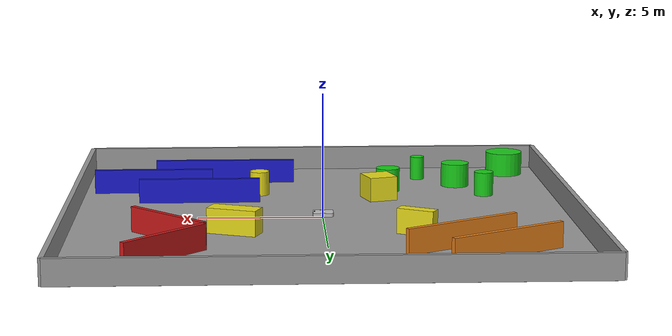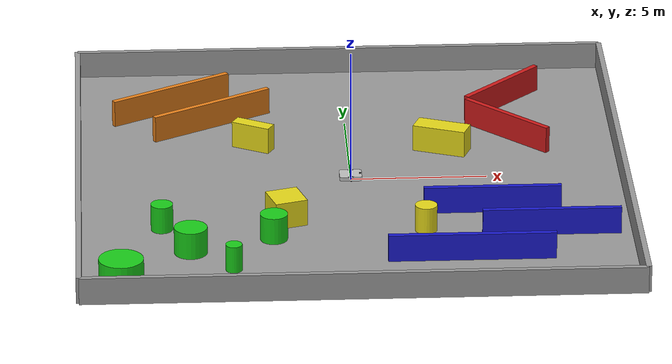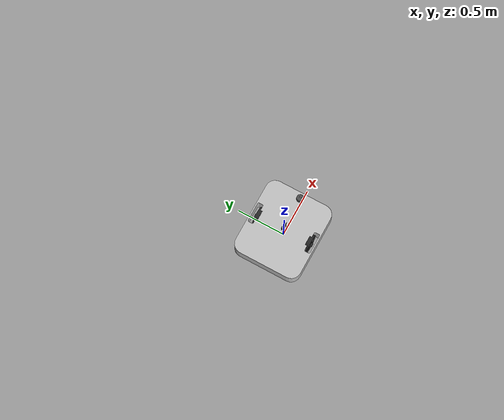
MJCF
<?xml version="1.0" encoding="utf-8"?>
<mujoco model="rl_agv_training_world">

  <!-- Sử dụng compiler và option của File 1 để đảm bảo động học robot hoạt động đúng -->
  <compiler
    angle="degree"
    meshdir="../meshes"
    autolimits="true"/>

  <option
    timestep="0.002"
    gravity="0 0 -9.81"
    integrator="implicitfast"/>

  <visual>
    <headlight
      ambient="0.4 0.4 0.4"
      diffuse="0.8 0.8 0.8"
      specular="0.1 0.1 0.1"/>
  </visual>

  <statistic center="0 0 0.2" extent="1.5"/>

  <default>
    <joint damping="0.1" armature="0.001"/>

    <default class="visual">
      <geom
        type="mesh"
        contype="0"
        conaffinity="0"
        density="0"
        group="2"/>
    </default>

    <default class="collision">
      <geom
        group="3"
        density="0"
        friction="1.0 0.005 0.0001"
        solref="0.005 1"
        solimp="0.9 0.95 0.001"/>
    </default>
  </default>

  <asset>
    <!-- Assets của Robot (Từ File 1) -->
    <mesh name="base_link_mesh" file="base_link.STL"/>
    <mesh name="left_wheel_mesh" file="left_wheel.STL"/>
    <mesh name="right_wheel_mesh" file="right_wheel.STL"/>
    <mesh name="front_left_caster_mesh" file="front_left_caster.STL"/>
    <mesh name="front_right_caster_mesh" file="front_right_caster.STL"/>
    <mesh name="rear_left_caster_mesh" file="rear_left_caster.STL"/>
    <mesh name="rear_right_caster_mesh" file="rear_right_caster.STL"/>
    <mesh name="imu_mesh" file="imu.STL"/>
    <mesh name="lidar_mesh" file="lidar.STL"/>

    <!-- Materials của Bản đồ (Từ File 2) -->
    <material name="mat_grey"   rgba="0.6 0.6 0.6 1"/>
    <material name="mat_green"  rgba="0.1 0.8 0.1 1"/>
    <material name="mat_red"    rgba="0.8 0.1 0.1 1"/>
    <material name="mat_blue"   rgba="0.1 0.1 0.8 1"/>
    <material name="mat_orange" rgba="0.9 0.5 0.1 1"/>
    <material name="mat_yellow" rgba="0.9 0.85 0.1 1"/>
  </asset>

  <worldbody>
    <!-- Môi trường ánh sáng và mặt đất (Từ File 2) -->
    <light directional="true" pos="0 0 10" dir="0 0 -1" diffuse="0.8 0.8 0.8"/>

    <geom name="ground_plane" type="plane" size="10 10 0.1" material="mat_grey" friction="1.0 0.005 0.0001"/>

    <!-- BOUNDARY WALLS (Từ File 2) -->
    <body name="boundary_walls">
        <geom name="wall_north" type="box" pos="0 10 0.5"  size="10 0.1 0.5" material="mat_grey"/>
        <geom name="wall_south" type="box" pos="0 -10 0.5" size="10 0.1 0.5" material="mat_grey"/>
        <geom name="wall_east"  type="box" pos="10 0 0.5"  size="0.1 10 0.5" material="mat_grey"/>
        <geom name="wall_west"  type="box" pos="-10 0 0.5" size="0.1 10 0.5" material="mat_grey"/>
    </body>

    <!-- COMPLEX OBSTACLE 1: PILLAR FOREST (Từ File 2) -->
    <body name="pillar_forest">
        <geom name="p1" type="cylinder" pos="-6 -6 0.5"     size="0.6 0.5" material="mat_green"/>
        <geom name="p2" type="cylinder" pos="-4.5 -7.5 0.5" size="0.3 0.5" material="mat_green"/>
        <geom name="p3" type="cylinder" pos="-7 -4 0.5"     size="0.4 0.5" material="mat_green"/>
        <geom name="p4" type="cylinder" pos="-3 -5 0.5"     size="0.5 0.5" material="mat_green"/>
        <geom name="p5" type="cylinder" pos="-8.5 -8.5 0.5" size="0.8 0.5" material="mat_green"/>
    </body>

    <!-- COMPLEX OBSTACLE 2: V-TRAP (Từ File 2 - Đã chuyển 0.78539 rad sang 45 độ) -->
    <body name="v_trap">
        <geom name="arm1" type="box" pos="6 6.5 0.5" euler="0 0 45"  size="2 0.1 0.5" material="mat_red"/>
        <geom name="arm2" type="box" pos="6 3.5 0.5" euler="0 0 -45" size="2 0.1 0.5" material="mat_red"/>
    </body>

    <!-- COMPLEX OBSTACLE 3: ZIG-ZAG CORRIDOR (Từ File 2) -->
    <body name="zigzag_corridor">
        <geom name="wall1" type="box" pos="5 -3 0.5" size="2.5 0.1 0.5" material="mat_blue"/>
        <geom name="wall2" type="box" pos="7 -5 0.5" size="2.5 0.1 0.5" material="mat_blue"/>
        <geom name="wall3" type="box" pos="4 -7 0.5" size="3 0.1 0.5" material="mat_blue"/>
    </body>

    <!-- COMPLEX OBSTACLE 4: ANGLED NARROW PASSAGE (Từ File 2 - Đã chuyển 0.52359 rad sang 30 độ) -->
    <body name="angled_passage">
        <geom name="side1" type="box" pos="-5 5 0.5"    euler="0 0 30" size="2.5 0.1 0.5" material="mat_orange"/>
        <geom name="side2" type="box" pos="-6.5 6.5 0.5" euler="0 0 30" size="2.5 0.1 0.5" material="mat_orange"/>
    </body>

    <!-- COMPLEX OBSTACLE 5: RANDOM DEBRIS (Từ File 2 - Đã chuyển đổi radian sang độ) -->
    <body name="random_debris">
        <geom name="box1" type="box" pos="-2.5 -3.5 0.5" euler="0 0 17.19"  size="0.6 0.6 0.5" material="mat_yellow"/>
        <geom name="box2" type="box" pos="-3.5 3 0.5"    euler="0 0 -28.65" size="0.75 0.25 0.5" material="mat_yellow"/>
        <geom name="box3" type="box" pos="3.5 2.5 0.5"   euler="0 0 68.75"  size="0.4 1.0 0.5" material="mat_yellow"/>
        <geom name="cylinder_center" type="cylinder" pos="2.5 -4.5 0.5" size="0.4 0.5" material="mat_yellow"/>
    </body>

    <!-- CẤU TRÚC ROBOT AGV ĐƯỢC NHÚNG TRỰC TIẾP LÀM GỐC -->
    <body name="base_link" pos="0 0 0.15">
      <freejoint name="base_freejoint"/>

      <inertial
        pos="-0.01641684226393 -2.127036027730e-08 0.01536357867772"
        mass="77.76660059782901"
        fullinertia="3.2338238997685766 4.5790630022931795 7.535284316709289 6.94917763249993e-07 -0.010447117841865663 -5.34948547228727e-08"/>

      <geom name="base_visual" class="visual" mesh="base_link_mesh" rgba="0.75 0.75 0.75 1"/>

      <!-- Collision boxes -->
      <geom name="base_collision_rear" class="collision" type="box" pos="-0.322 0 0.015" size="0.100 0.357 0.0725" rgba="0.2 0.5 0.8 0.15"/>
      <geom name="base_collision_center" class="collision" type="box" pos="-0.012 0 0.015" size="0.210 0.250 0.0725" rgba="0.2 0.5 0.8 0.15"/>
      <geom name="base_collision_front" class="collision" type="box" pos="0.298 0 0.015" size="0.100 0.357 0.0725" rgba="0.2 0.5 0.8 0.15"/>

      <!-- Navigation reference -->
      <site name="base_foot_link" type="sphere" pos="0 0 -0.1" size="0.005" rgba="0 1 0 0"/>

      <!-- Left Wheel -->
      <body name="left_wheel" pos="0 0.297 0" euler="-90 0 0">
        <joint name="left_wheel_jt" type="hinge" axis="0 0 1" limited="false" damping="0.2"/>
        <inertial pos="-2.2767068983e-06 -4.0883539315e-07 -0.0141278415" mass="0.936684355982048" fullinertia="0.0029343491062 0.0029343328072 0.0056452287041 3.0243843436e-09 1.7611681221e-08 3.1625847890e-09"/>
        <geom name="left_wheel_visual" class="visual" mesh="left_wheel_mesh" rgba="0.15 0.15 0.15 1"/>
        <geom name="left_wheel_collision" class="collision" type="cylinder" size="0.1 0.028" friction="1.2 0.01 0.0001" rgba="1 0 0 0.2"/>
      </body>

      <!-- Right Wheel -->
      <body name="right_wheel" pos="0 -0.297 0" euler="-90 0 0">
        <joint name="right_wheel_jt" type="hinge" axis="0 0 1" limited="false" damping="0.2"/>
        <inertial pos="2.0712286184e-06 -1.0298315041e-06 0.0141278415" mass="0.936684355982047" fullinertia="0.0029343462033 0.0029343357101 0.0056452287041 -6.9306759880e-09 1.6022183872e-08 -7.9663594389e-09"/>
        <geom name="right_wheel_visual" class="visual" mesh="right_wheel_mesh" rgba="0.15 0.15 0.15 1"/>
        <geom name="right_wheel_collision" class="collision" type="cylinder" size="0.1 0.028" friction="1.2 0.01 0.0001" rgba="1 0 0 0.2"/>
      </body>

      <!-- 4 Casters -->
      <body name="front_left_caster" pos="0.323 0.167 -0.078807">
        <joint name="front_left_caster_jt" type="ball" damping="0.001"/>
        <inertial pos="0 0 -2.7371825402e-05" mass="0.0399091557703669" fullinertia="7.2111462855e-06 7.2111444698e-06 7.2594199749e-06 8.8035157662e-13 -8.7566291737e-14 2.1607959245e-13"/>
        <geom name="caster_front_left_visual" class="visual" mesh="front_left_caster_mesh" rgba="0.2 0.2 0.2 1"/>
        <geom name="caster_front_left_collision" class="collision" type="sphere" size="0.0212" friction="0.35 0.002 0.0001" rgba="0.1 0.8 0.2 0.25"/>
      </body>

      <body name="front_right_caster" pos="0.323 -0.167 -0.078807">
        <joint name="front_right_caster_jt" type="ball" damping="0.001"/>
        <inertial pos="0 0 -2.7371825402e-05" mass="0.0399091557703669" fullinertia="7.2111462855e-06 7.2111444698e-06 7.2594199749e-06 8.8035157716e-13 -8.7566300715e-14 2.1607958912e-13"/>
        <geom name="caster_front_right_visual" class="visual" mesh="front_right_caster_mesh" rgba="0.2 0.2 0.2 1"/>
        <geom name="caster_front_right_collision" class="collision" type="sphere" size="0.0212" friction="0.35 0.002 0.0001" rgba="0.1 0.8 0.2 0.25"/>
      </body>

      <body name="rear_left_caster" pos="-0.347 0.167 -0.078807">
        <joint name="rear_left_caster_jt" type="ball" damping="0.001"/>
        <inertial pos="0 0 -2.7371825402e-05" mass="0.0399091557703668" fullinertia="7.2111462855e-06 7.2111444698e-06 7.2594199749e-06 8.8035157366e-13 -8.7566301701e-14 2.1607958824e-13"/>
        <geom name="caster_rear_left_visual" class="visual" mesh="rear_left_caster_mesh" rgba="0.2 0.2 0.2 1"/>
        <geom name="caster_rear_left_collision" class="collision" type="sphere" size="0.0212" friction="0.35 0.002 0.0001" rgba="0.1 0.8 0.2 0.25"/>
      </body>

      <body name="rear_right_caster" pos="-0.347 -0.167 -0.078807">
        <joint name="rear_right_caster_jt" type="ball" damping="0.001"/>
        <inertial pos="0 0 -2.7371825402e-05" mass="0.0399091557703668" fullinertia="7.2111459706e-06 7.2111447847e-06 7.2594199749e-06 -1.1169235652e-12 -1.2014432927e-13 -1.9980887354e-13"/>
        <geom name="caster_rear_right_visual" class="visual" mesh="rear_right_caster_mesh" rgba="0.2 0.2 0.2 1"/>
        <geom name="caster_rear_right_collision" class="collision" type="sphere" size="0.0212" friction="0.35 0.002 0.0001" rgba="0.1 0.8 0.2 0.25"/>
      </body>

      <!-- IMU -->
      <body name="imu" pos="0 0 0.1091">
        <inertial pos="0.0023989165 0 -0.0108251693" mass="0.0350113154456988" fullinertia="4.9486481208e-06 8.8682844667e-06 1.1262903048e-05 2.0030538049e-12 -1.7595997497e-08 6.5460652693e-23"/>
        <geom name="imu_visual" class="visual" mesh="imu_mesh" rgba="0.25 0.25 0.25 1"/>
        <site name="imu_site" type="sphere" pos="0 0 0" size="0.005" rgba="1 0.5 0 0"/>
      </body>

      <!-- LiDAR -->
      <body name="lidar" pos="0.33152 0 0.11235">
        <inertial pos="0.0038697684 -1.4554375616e-05 -0.0055496380" mass="0.165382751635991" fullinertia="7.8865183611e-05 7.5190291494e-05 1.0994675306e-04 4.8471764092e-08 2.1847944396e-06 2.8860157251e-08"/>
        <geom name="lidar_visual" class="visual" mesh="lidar_mesh" rgba="0.3 0.3 0.3 1"/>
        <site name="lidar_origin" type="sphere" pos="0 0 0" size="0.005" rgba="1 0 0 0"/>
      </body>

    </body>
  </worldbody>

  <sensor>
    <gyro name="imu_gyro" site="imu_site"/>
    <accelerometer name="imu_accelerometer" site="imu_site"/>
    <framequat name="imu_orientation" objtype="site" objname="imu_site"/>
  </sensor>

  <actuator>
    <velocity name="left_wheel_motor" joint="left_wheel_jt" kv="100" ctrlrange="-8.3775804096 8.3775804096" forcerange="-19.1 19.1"/>
    <velocity name="right_wheel_motor" joint="right_wheel_jt" kv="100" ctrlrange="-8.3775804096 8.3775804096" forcerange="-19.1 19.1"/>
  </actuator>

</mujoco>
